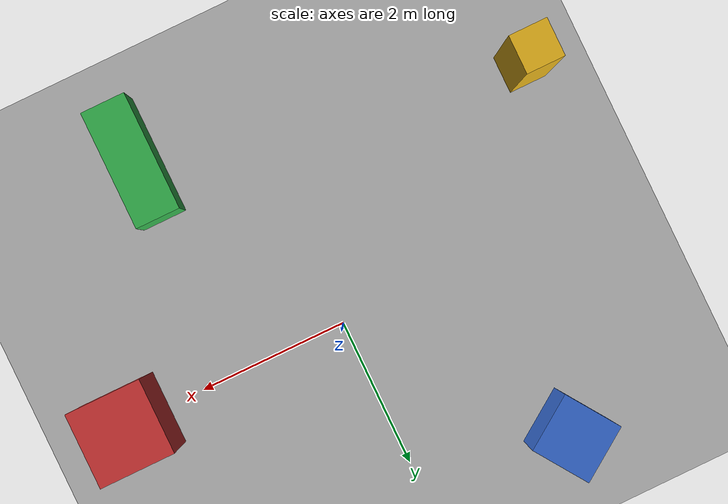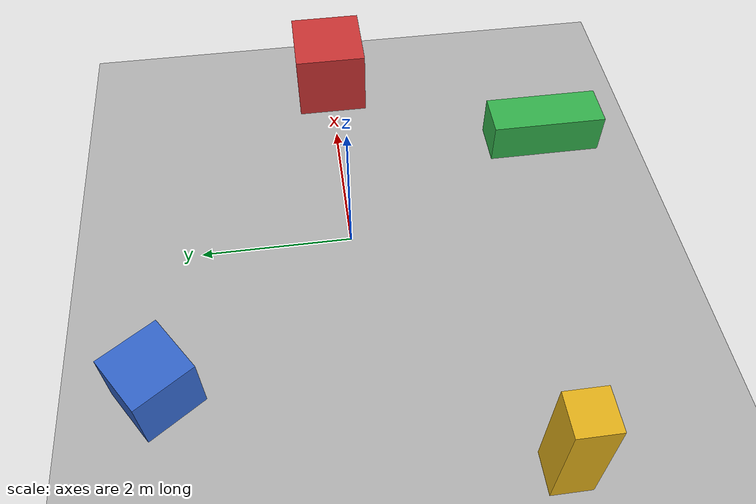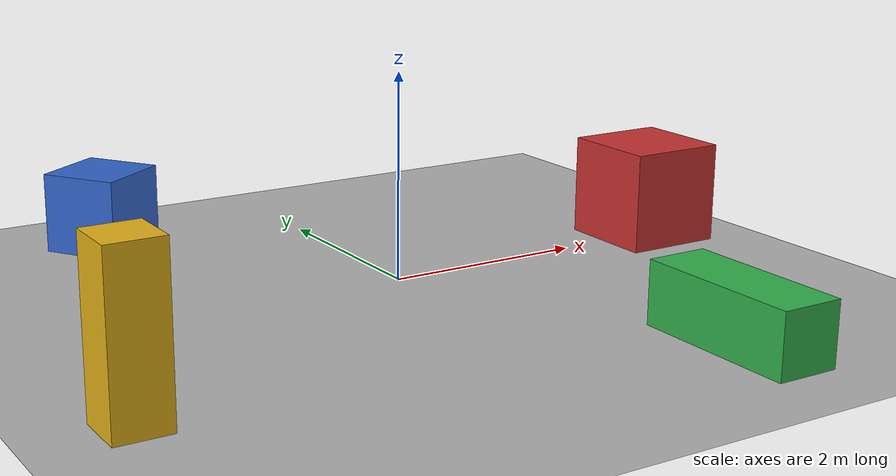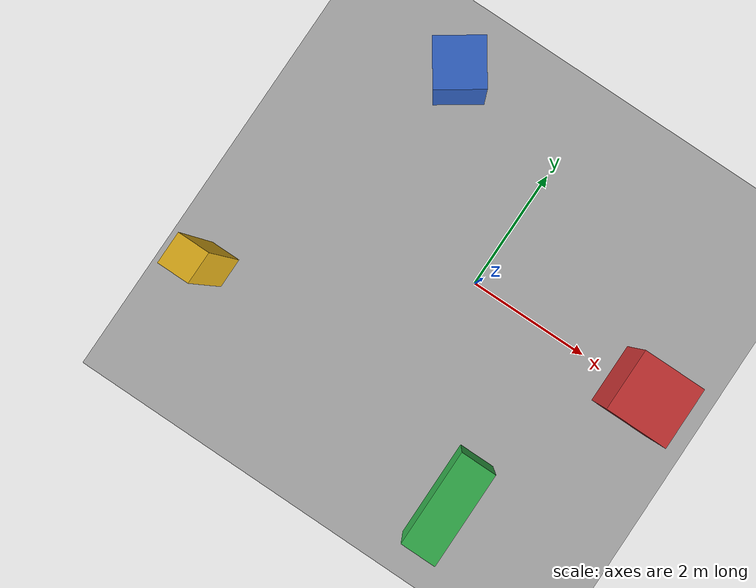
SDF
<?xml version="1.0"?>
<sdf version="1.8">
  <world name="butler_test">

    <physics name="1ms" type="ignored">
      <max_step_size>0.001</max_step_size>
      <real_time_factor>1.0</real_time_factor>
    </physics>

    <plugin filename="gz-sim-physics-system"
            name="gz::sim::systems::Physics"/>
    <plugin filename="gz-sim-user-commands-system"
            name="gz::sim::systems::UserCommands"/>
    <plugin filename="gz-sim-scene-broadcaster-system"
            name="gz::sim::systems::SceneBroadcaster"/>
    <plugin filename="gz-sim-sensors-system"
            name="gz::sim::systems::Sensors">
      <render_engine>ogre2</render_engine>
    </plugin>

    <light type="directional" name="sun">
      <cast_shadows>true</cast_shadows>
      <pose>0 0 10 0 0 0</pose>
      <diffuse>0.8 0.8 0.8 1</diffuse>
      <specular>0.2 0.2 0.2 1</specular>
      <direction>-0.5 0.1 -0.9</direction>
    </light>

    <model name="ground_plane">
      <static>true</static>
      <link name="link">
        <collision name="collision">
          <geometry>
            <plane>
              <normal>0 0 1</normal>
              <size>50 50</size>
            </plane>
          </geometry>
        </collision>
        <visual name="visual">
          <geometry>
            <plane>
              <normal>0 0 1</normal>
              <size>50 50</size>
            </plane>
          </geometry>
          <material>
            <ambient>0.7 0.7 0.7 1</ambient>
            <diffuse>0.7 0.7 0.7 1</diffuse>
          </material>
        </visual>
      </link>
    </model>

    <!-- A few box obstacles at lidar height, spread around the spawn point -->
    <model name="box_a">
      <static>true</static>
      <pose>3.0 0.0 0.5 0 0 0</pose>
      <link name="link">
        <collision name="collision">
          <geometry><box><size>1 1 1</size></box></geometry>
        </collision>
        <visual name="visual">
          <geometry><box><size>1 1 1</size></box></geometry>
          <material>
            <ambient>0.8 0.2 0.2 1</ambient>
            <diffuse>0.8 0.2 0.2 1</diffuse>
          </material>
        </visual>
      </link>
    </model>

    <model name="box_b">
      <static>true</static>
      <pose>-2.0 2.5 0.4 0 0 0.6</pose>
      <link name="link">
        <collision name="collision">
          <geometry><box><size>0.8 0.8 0.8</size></box></geometry>
        </collision>
        <visual name="visual">
          <geometry><box><size>0.8 0.8 0.8</size></box></geometry>
          <material>
            <ambient>0.2 0.4 0.8 1</ambient>
            <diffuse>0.2 0.4 0.8 1</diffuse>
          </material>
        </visual>
      </link>
    </model>

    <model name="box_c">
      <static>true</static>
      <pose>1.5 -3.0 0.3 0 0 0</pose>
      <link name="link">
        <collision name="collision">
          <geometry><box><size>0.6 1.6 0.6</size></box></geometry>
        </collision>
        <visual name="visual">
          <geometry><box><size>0.6 1.6 0.6</size></box></geometry>
          <material>
            <ambient>0.2 0.7 0.3 1</ambient>
            <diffuse>0.2 0.7 0.3 1</diffuse>
          </material>
        </visual>
      </link>
    </model>

    <model name="box_d">
      <static>true</static>
      <pose>-3.5 -2.0 0.75 0 0 0</pose>
      <link name="link">
        <collision name="collision">
          <geometry><box><size>0.5 0.5 1.5</size></box></geometry>
        </collision>
        <visual name="visual">
          <geometry><box><size>0.5 0.5 1.5</size></box></geometry>
          <material>
            <ambient>0.9 0.7 0.1 1</ambient>
            <diffuse>0.9 0.7 0.1 1</diffuse>
          </material>
        </visual>
      </link>
    </model>

  </world>
</sdf>
